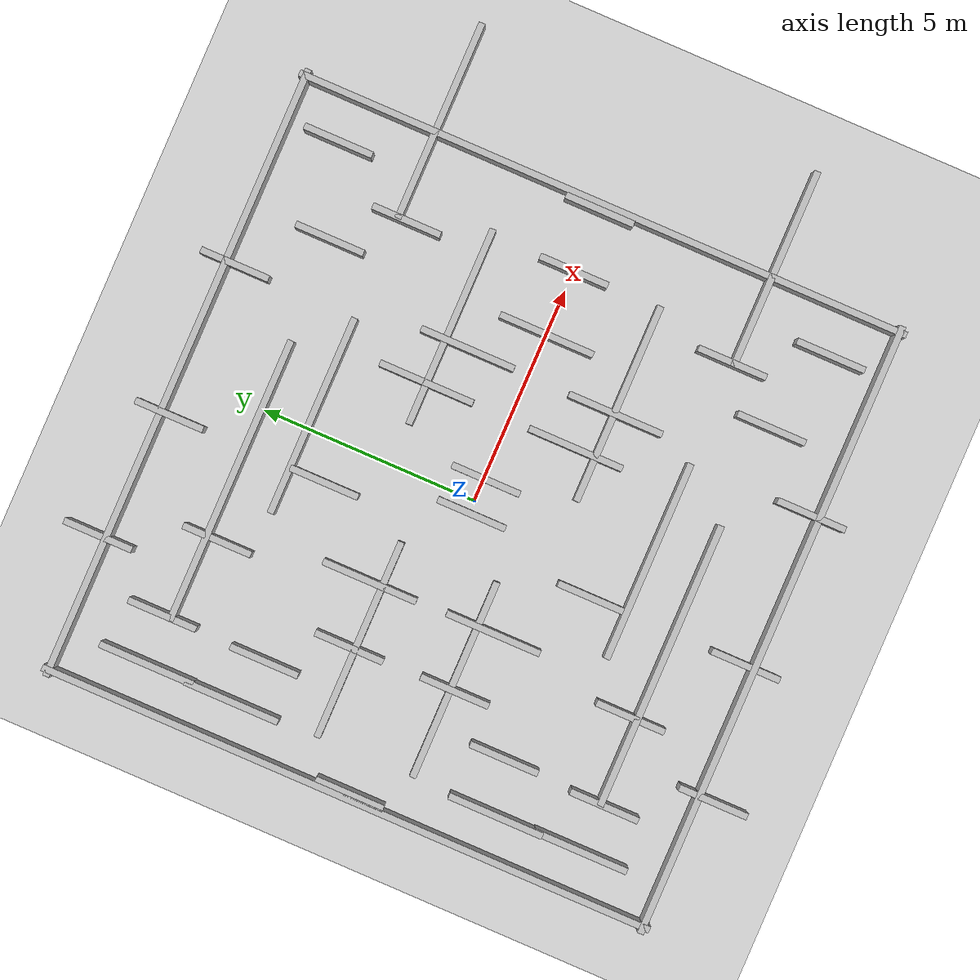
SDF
<sdf version='1.10'>
  <world name='pac_mouse_maze'>
    <physics name='1ms' type='ignored'>
      <max_step_size>0.001</max_step_size>
      <real_time_factor>1</real_time_factor>
      <real_time_update_rate>1000</real_time_update_rate>
    </physics>
    <plugin name='gz::sim::systems::Physics' filename='gz-sim-physics-system'/>
    <plugin name='gz::sim::systems::UserCommands' filename='gz-sim-user-commands-system'/>
    <plugin name='gz::sim::systems::SceneBroadcaster' filename='gz-sim-scene-broadcaster-system'/>
    <plugin name='gz::sim::systems::Sensors' filename='gz-sim-sensors-system'>
      <render_engine>ogre2</render_engine>
    </plugin>
    <gravity>0 0 -9.8000000000000007</gravity>
    <magnetic_field>5.5644999999999998e-06 2.2875799999999999e-05 -4.2388400000000002e-05</magnetic_field>
    <atmosphere type='adiabatic'/>
    <scene>
      <ambient>0.400000006 0.400000006 0.400000006 1</ambient>
      <background>0.699999988 0.699999988 0.699999988 1</background>
      <shadows>true</shadows>
    </scene>
    <model name='ground_plane'>
      <static>true</static>
      <link name='link'>
        <collision name='collision'>
          <geometry>
            <plane>
              <normal>0 0 1</normal>
              <size>100 100</size>
            </plane>
          </geometry>
          <surface>
            <friction>
              <ode/>
            </friction>
            <bounce/>
            <contact/>
          </surface>
        </collision>
        <visual name='visual'>
          <geometry>
            <plane>
              <normal>0 0 1</normal>
              <size>100 100</size>
            </plane>
          </geometry>
          <material>
            <ambient>0.800000012 0.800000012 0.800000012 1</ambient>
            <diffuse>0.800000012 0.800000012 0.800000012 1</diffuse>
          </material>
        </visual>
        <pose>0 0 0 0 0 0</pose>
        <inertial>
          <pose>0 0 0 0 0 0</pose>
          <mass>1</mass>
          <inertia>
            <ixx>1</ixx>
            <ixy>0</ixy>
            <ixz>0</ixz>
            <iyy>1</iyy>
            <iyz>0</iyz>
            <izz>1</izz>
          </inertia>
        </inertial>
        <enable_wind>false</enable_wind>
      </link>
      <pose>0 0 0 0 0 0</pose>
      <self_collide>false</self_collide>
    </model>
    <model name='wall_n'>
      <static>true</static>
      <link name='l'>
        <pose>0 7 0.5 0 0 0</pose>
        <collision name='c'>
          <geometry>
            <box>
              <size>14.300000000000001 0.14999999999999999 1</size>
            </box>
          </geometry>
          <surface>
            <friction>
              <ode/>
            </friction>
            <bounce/>
            <contact/>
          </surface>
        </collision>
        <visual name='v'>
          <geometry>
            <box>
              <size>14.300000000000001 0.14999999999999999 1</size>
            </box>
          </geometry>
        </visual>
        <inertial>
          <pose>0 0 0 0 0 0</pose>
          <mass>1</mass>
          <inertia>
            <ixx>1</ixx>
            <ixy>0</ixy>
            <ixz>0</ixz>
            <iyy>1</iyy>
            <iyz>0</iyz>
            <izz>1</izz>
          </inertia>
        </inertial>
        <enable_wind>false</enable_wind>
      </link>
      <pose>0 0 0 0 0 0</pose>
      <self_collide>false</self_collide>
    </model>
    <model name='wall_s'>
      <static>true</static>
      <link name='l'>
        <pose>0 -7 0.5 0 0 0</pose>
        <collision name='c'>
          <geometry>
            <box>
              <size>14.300000000000001 0.14999999999999999 1</size>
            </box>
          </geometry>
          <surface>
            <friction>
              <ode/>
            </friction>
            <bounce/>
            <contact/>
          </surface>
        </collision>
        <visual name='v'>
          <geometry>
            <box>
              <size>14.300000000000001 0.14999999999999999 1</size>
            </box>
          </geometry>
        </visual>
        <inertial>
          <pose>0 0 0 0 0 0</pose>
          <mass>1</mass>
          <inertia>
            <ixx>1</ixx>
            <ixy>0</ixy>
            <ixz>0</ixz>
            <iyy>1</iyy>
            <iyz>0</iyz>
            <izz>1</izz>
          </inertia>
        </inertial>
        <enable_wind>false</enable_wind>
      </link>
      <pose>0 0 0 0 0 0</pose>
      <self_collide>false</self_collide>
    </model>
    <model name='wall_e'>
      <static>true</static>
      <link name='l'>
        <pose>7 0 0.5 0 0 0</pose>
        <collision name='c'>
          <geometry>
            <box>
              <size>0.14999999999999999 14.300000000000001 1</size>
            </box>
          </geometry>
          <surface>
            <friction>
              <ode/>
            </friction>
            <bounce/>
            <contact/>
          </surface>
        </collision>
        <visual name='v'>
          <geometry>
            <box>
              <size>0.14999999999999999 14.300000000000001 1</size>
            </box>
          </geometry>
        </visual>
        <inertial>
          <pose>0 0 0 0 0 0</pose>
          <mass>1</mass>
          <inertia>
            <ixx>1</ixx>
            <ixy>0</ixy>
            <ixz>0</ixz>
            <iyy>1</iyy>
            <iyz>0</iyz>
            <izz>1</izz>
          </inertia>
        </inertial>
        <enable_wind>false</enable_wind>
      </link>
      <pose>0 0 0 0 0 0</pose>
      <self_collide>false</self_collide>
    </model>
    <model name='wall_w'>
      <static>true</static>
      <link name='l'>
        <pose>-7 0 0.5 0 0 0</pose>
        <collision name='c'>
          <geometry>
            <box>
              <size>0.14999999999999999 14.300000000000001 1</size>
            </box>
          </geometry>
          <surface>
            <friction>
              <ode/>
            </friction>
            <bounce/>
            <contact/>
          </surface>
        </collision>
        <visual name='v'>
          <geometry>
            <box>
              <size>0.14999999999999999 14.300000000000001 1</size>
            </box>
          </geometry>
        </visual>
        <inertial>
          <pose>0 0 0 0 0 0</pose>
          <mass>1</mass>
          <inertia>
            <ixx>1</ixx>
            <ixy>0</ixy>
            <ixz>0</ixz>
            <iyy>1</iyy>
            <iyz>0</iyz>
            <izz>1</izz>
          </inertia>
        </inertial>
        <enable_wind>false</enable_wind>
      </link>
      <pose>0 0 0 0 0 0</pose>
      <self_collide>false</self_collide>
    </model>
    <model name='center_h1'>
      <static>true</static>
      <link name='l'>
        <pose>0 1.2 0.5 0 0 0</pose>
        <collision name='c'>
          <geometry>
            <box>
              <size>4.5999999999999996 0.14999999999999999 1</size>
            </box>
          </geometry>
          <surface>
            <friction>
              <ode/>
            </friction>
            <bounce/>
            <contact/>
          </surface>
        </collision>
        <visual name='v'>
          <geometry>
            <box>
              <size>4.5999999999999996 0.14999999999999999 1</size>
            </box>
          </geometry>
        </visual>
        <inertial>
          <pose>0 0 0 0 0 0</pose>
          <mass>1</mass>
          <inertia>
            <ixx>1</ixx>
            <ixy>0</ixy>
            <ixz>0</ixz>
            <iyy>1</iyy>
            <iyz>0</iyz>
            <izz>1</izz>
          </inertia>
        </inertial>
        <enable_wind>false</enable_wind>
      </link>
      <pose>0.31083199381828308 2.7484714984893799 0 0 0 0</pose>
      <self_collide>false</self_collide>
    </model>
    <model name='center_h2'>
      <static>true</static>
      <link name='l'>
        <pose>0 -1.2 0.5 0 0 0</pose>
        <collision name='c'>
          <geometry>
            <box>
              <size>4.5999999999999996 0.14999999999999999 1</size>
            </box>
          </geometry>
          <surface>
            <friction>
              <ode/>
            </friction>
            <bounce/>
            <contact/>
          </surface>
        </collision>
        <visual name='v'>
          <geometry>
            <box>
              <size>4.5999999999999996 0.14999999999999999 1</size>
            </box>
          </geometry>
        </visual>
        <inertial>
          <pose>0 0 0 0 0 0</pose>
          <mass>1</mass>
          <inertia>
            <ixx>1</ixx>
            <ixy>0</ixy>
            <ixz>0</ixz>
            <iyy>1</iyy>
            <iyz>0</iyz>
            <izz>1</izz>
          </inertia>
        </inertial>
        <enable_wind>false</enable_wind>
      </link>
      <pose>0.30546599626541138 -2.7761015892028809 0 0 0 0</pose>
      <self_collide>false</self_collide>
    </model>
    <model name='mid_n1'>
      <static>true</static>
      <link name='l'>
        <pose>0 4.5999999999999996 0.5 0 0 0</pose>
        <collision name='c'>
          <geometry>
            <box>
              <size>6.5999999999999996 0.14999999999999999 1</size>
            </box>
          </geometry>
          <surface>
            <friction>
              <ode/>
            </friction>
            <bounce/>
            <contact/>
          </surface>
        </collision>
        <visual name='v'>
          <geometry>
            <box>
              <size>6.5999999999999996 0.14999999999999999 1</size>
            </box>
          </geometry>
        </visual>
        <inertial>
          <pose>0 0 0 0 0 0</pose>
          <mass>1</mass>
          <inertia>
            <ixx>1</ixx>
            <ixy>0</ixy>
            <ixz>0</ixz>
            <iyy>1</iyy>
            <iyz>0</iyz>
            <izz>1</izz>
          </inertia>
        </inertial>
        <enable_wind>false</enable_wind>
      </link>
      <pose>-1.6817300319671631 0.41679677367210388 0 0 0 0</pose>
      <self_collide>false</self_collide>
    </model>
    <model name='mid_s1'>
      <static>true</static>
      <link name='l'>
        <pose>0 -4.5999999999999996 0.5 0 0 0</pose>
        <collision name='c'>
          <geometry>
            <box>
              <size>6.5999999999999996 0.14999999999999999 1</size>
            </box>
          </geometry>
          <surface>
            <friction>
              <ode/>
            </friction>
            <bounce/>
            <contact/>
          </surface>
        </collision>
        <visual name='v'>
          <geometry>
            <box>
              <size>6.5999999999999996 0.14999999999999999 1</size>
            </box>
          </geometry>
        </visual>
        <inertial>
          <pose>0 0 0 0 0 0</pose>
          <mass>1</mass>
          <inertia>
            <ixx>1</ixx>
            <ixy>0</ixy>
            <ixz>0</ixz>
            <iyy>1</iyy>
            <iyz>0</iyz>
            <izz>1</izz>
          </inertia>
        </inertial>
        <enable_wind>false</enable_wind>
      </link>
      <pose>-1.6651300191879272 -0.50916963815689087 0 0 0 0</pose>
      <self_collide>false</self_collide>
    </model>
    <model name='tooth_n1'>
      <static>true</static>
      <link name='l'>
        <pose>-1 2.7999999999999998 0.5 0 0 0</pose>
        <collision name='c'>
          <geometry>
            <box>
              <size>0.14999999999999999 1.6000000000000001 1</size>
            </box>
          </geometry>
          <surface>
            <friction>
              <ode/>
            </friction>
            <bounce/>
            <contact/>
          </surface>
        </collision>
        <visual name='v'>
          <geometry>
            <box>
              <size>0.14999999999999999 1.6000000000000001 1</size>
            </box>
          </geometry>
        </visual>
        <inertial>
          <pose>0 0 0 0 0 0</pose>
          <mass>1</mass>
          <inertia>
            <ixx>1</ixx>
            <ixy>0</ixy>
            <ixz>0</ixz>
            <iyy>1</iyy>
            <iyz>0</iyz>
            <izz>1</izz>
          </inertia>
        </inertial>
        <enable_wind>false</enable_wind>
      </link>
      <pose>-3.973536491394043 0 0 0 0 0</pose>
      <self_collide>false</self_collide>
    </model>
    <model name='tooth_n2'>
      <static>true</static>
      <link name='l'>
        <pose>1 2.7999999999999998 0.5 0 0 0</pose>
        <collision name='c'>
          <geometry>
            <box>
              <size>0.14999999999999999 1.6000000000000001 1</size>
            </box>
          </geometry>
          <surface>
            <friction>
              <ode/>
            </friction>
            <bounce/>
            <contact/>
          </surface>
        </collision>
        <visual name='v'>
          <geometry>
            <box>
              <size>0.14999999999999999 1.6000000000000001 1</size>
            </box>
          </geometry>
        </visual>
        <inertial>
          <pose>0 0 0 0 0 0</pose>
          <mass>1</mass>
          <inertia>
            <ixx>1</ixx>
            <ixy>0</ixy>
            <ixz>0</ixz>
            <iyy>1</iyy>
            <iyz>0</iyz>
            <izz>1</izz>
          </inertia>
        </inertial>
        <enable_wind>false</enable_wind>
      </link>
      <pose>-1.9143466949462891 0.34273400902748108 0 0 0 0</pose>
      <self_collide>false</self_collide>
    </model>
    <model name='tooth_s1'>
      <static>true</static>
      <link name='l'>
        <pose>-1 -2.7999999999999998 0.5 0 0 0</pose>
        <collision name='c'>
          <geometry>
            <box>
              <size>0.14999999999999999 1.6000000000000001 1</size>
            </box>
          </geometry>
          <surface>
            <friction>
              <ode/>
            </friction>
            <bounce/>
            <contact/>
          </surface>
        </collision>
        <visual name='v'>
          <geometry>
            <box>
              <size>0.14999999999999999 1.6000000000000001 1</size>
            </box>
          </geometry>
        </visual>
        <inertial>
          <pose>0 0 0 0 0 0</pose>
          <mass>1</mass>
          <inertia>
            <ixx>1</ixx>
            <ixy>0</ixy>
            <ixz>0</ixz>
            <iyy>1</iyy>
            <iyz>0</iyz>
            <izz>1</izz>
          </inertia>
        </inertial>
        <enable_wind>false</enable_wind>
      </link>
      <pose>-3.8529505729675293 0 0 0 0 0</pose>
      <self_collide>false</self_collide>
    </model>
    <model name='tooth_s2'>
      <static>true</static>
      <link name='l'>
        <pose>1 -2.7999999999999998 0.5 0 0 0</pose>
        <collision name='c'>
          <geometry>
            <box>
              <size>0.14999999999999999 1.6000000000000001 1</size>
            </box>
          </geometry>
          <surface>
            <friction>
              <ode/>
            </friction>
            <bounce/>
            <contact/>
          </surface>
        </collision>
        <visual name='v'>
          <geometry>
            <box>
              <size>0.14999999999999999 1.6000000000000001 1</size>
            </box>
          </geometry>
        </visual>
        <inertial>
          <pose>0 0 0 0 0 0</pose>
          <mass>1</mass>
          <inertia>
            <ixx>1</ixx>
            <ixy>0</ixy>
            <ixz>0</ixz>
            <iyy>1</iyy>
            <iyz>0</iyz>
            <izz>1</izz>
          </inertia>
        </inertial>
        <enable_wind>false</enable_wind>
      </link>
      <pose>-1.9104142189025879 -0.36555600166320801 0 0 0 0</pose>
      <self_collide>false</self_collide>
    </model>
    <model name='side_l1'>
      <static>true</static>
      <link name='l'>
        <pose>-4.5999999999999996 1.8 0.5 0 0 0</pose>
        <collision name='c'>
          <geometry>
            <box>
              <size>0.14999999999999999 2.2000000000000002 1</size>
            </box>
          </geometry>
          <surface>
            <friction>
              <ode/>
            </friction>
            <bounce/>
            <contact/>
          </surface>
        </collision>
        <visual name='v'>
          <geometry>
            <box>
              <size>0.14999999999999999 2.2000000000000002 1</size>
            </box>
          </geometry>
        </visual>
        <inertial>
          <pose>0 0 0 0 0 0</pose>
          <mass>1</mass>
          <inertia>
            <ixx>1</ixx>
            <ixy>0</ixy>
            <ixz>0</ixz>
            <iyy>1</iyy>
            <iyz>0</iyz>
            <izz>1</izz>
          </inertia>
        </inertial>
        <enable_wind>false</enable_wind>
      </link>
      <pose>-1.4447000026702881 3.3100700378417969 0.017654599621891975 0 0 0</pose>
      <self_collide>false</self_collide>
    </model>
    <model name='side_l2'>
      <static>true</static>
      <link name='l'>
        <pose>-4 -1.8 0.5 0 0 0</pose>
        <collision name='c'>
          <geometry>
            <box>
              <size>0.14999999999999999 2.2000000000000002 1</size>
            </box>
          </geometry>
          <surface>
            <friction>
              <ode/>
            </friction>
            <bounce/>
            <contact/>
          </surface>
        </collision>
        <visual name='v'>
          <geometry>
            <box>
              <size>0.14999999999999999 2.2000000000000002 1</size>
            </box>
          </geometry>
        </visual>
        <inertial>
          <pose>0 0 0 0 0 0</pose>
          <mass>1</mass>
          <inertia>
            <ixx>1</ixx>
            <ixy>0</ixy>
            <ixz>0</ixz>
            <iyy>1</iyy>
            <iyz>0</iyz>
            <izz>1</izz>
          </inertia>
        </inertial>
        <enable_wind>false</enable_wind>
      </link>
      <pose>1.5401099920272827 0.2899869978427887 0 0 0 0</pose>
      <self_collide>false</self_collide>
    </model>

    <model name='side_l1_1'>
      <static>true</static>
      <link name='l'>
        <pose>-4.5999999999999996 1.8 0.5 0 0 0</pose>
        <collision name='c'>
          <geometry>
            <box>
              <size>0.14999999999999999 2.2000000000000002 1</size>
            </box>
          </geometry>
          <surface>
            <friction>
              <ode/>
            </friction>
            <bounce/>
            <contact/>
          </surface>
        </collision>
        <visual name='v'>
          <geometry>
            <box>
              <size>0.14999999999999999 2.2000000000000002 1</size>
            </box>
          </geometry>
        </visual>
      </link>
      <pose>-1.4374589282612344 -6.9057183626162679 0 0 0 0</pose>
      <self_collide>false</self_collide>
    </model>
    <model name='side_l1_2'>
      <static>true</static>
      <link name='l'>
        <pose>-4.5999999999999996 1.8 0.5 0 0 0</pose>
        <collision name='c'>
          <geometry>
            <box>
              <size>0.14999999999999999 2.2000000000000002 1</size>
            </box>
          </geometry>
          <surface>
            <friction>
              <ode/>
            </friction>
            <bounce/>
            <contact/>
          </surface>
        </collision>
        <visual name='v'>
          <geometry>
            <box>
              <size>0.14999999999999999 2.2000000000000002 1</size>
            </box>
          </geometry>
        </visual>
      </link>
      <pose>-1.462189555409112 1.2981442079814005 0.017654599621891975 0 0 0</pose>
      <self_collide>false</self_collide>
    </model>
    <model name='side_l1_3'>
      <static>true</static>
      <link name='l'>
        <pose>-4.5999999999999996 1.8 0.5 0 0 0</pose>
        <collision name='c'>
          <geometry>
            <box>
              <size>0.14999999999999999 2.2000000000000002 1</size>
            </box>
          </geometry>
          <surface>
            <friction>
              <ode/>
            </friction>
            <bounce/>
            <contact/>
          </surface>
        </collision>
        <visual name='v'>
          <geometry>
            <box>
              <size>0.14999999999999999 2.2000000000000002 1</size>
            </box>
          </geometry>
        </visual>
      </link>
      <pose>-1.4584377596112619 -4.924460619562498 0.017654599621891975 0 0 0</pose>
      <self_collide>false</self_collide>
    </model>
    <model name='center_h1_1_1_1'>
      <static>true</static>
      <link name='l'>
        <pose>0 1.2 0.5 0 0 0</pose>
        <collision name='c'>
          <geometry>
            <box>
              <size>4.5999999999999996 0.14999999999999999 1</size>
            </box>
          </geometry>
          <surface>
            <friction>
              <ode/>
            </friction>
            <bounce/>
            <contact/>
          </surface>
        </collision>
        <visual name='v'>
          <geometry>
            <box>
              <size>4.5999999999999996 0.14999999999999999 1</size>
            </box>
          </geometry>
        </visual>
      </link>
      <pose>-3.7317791080781486 -0.10137727959371734 0 0 0 0</pose>
      <self_collide>false</self_collide>
    </model>
    <model name='center_h1_1_1_2'>
      <static>true</static>
      <link name='l'>
        <pose>0 1.2 0.5 0 0 0</pose>
        <collision name='c'>
          <geometry>
            <box>
              <size>4.5999999999999996 0.14999999999999999 1</size>
            </box>
          </geometry>
          <surface>
            <friction>
              <ode/>
            </friction>
            <bounce/>
            <contact/>
          </surface>
        </collision>
        <visual name='v'>
          <geometry>
            <box>
              <size>4.5999999999999996 0.14999999999999999 1</size>
            </box>
          </geometry>
        </visual>
      </link>
      <pose>-3.7089964812762171 -2.3421180831138217 0 0 0 0</pose>
      <self_collide>false</self_collide>
    </model>
    <model name='tooth_s1_1'>
      <static>true</static>
      <link name='l'>
        <pose>-1 -2.7999999999999998 0.5 0 0 0</pose>
        <collision name='c'>
          <geometry>
            <box>
              <size>0.14999999999999999 1.6000000000000001 1</size>
            </box>
          </geometry>
          <surface>
            <friction>
              <ode/>
            </friction>
            <bounce/>
            <contact/>
          </surface>
        </collision>
        <visual name='v'>
          <geometry>
            <box>
              <size>0.14999999999999999 1.6000000000000001 1</size>
            </box>
          </geometry>
        </visual>
      </link>
      <pose>-2.9704577070137894 4.031986442187014 0 0 0 0</pose>
      <self_collide>false</self_collide>
    </model>
    <model name='tooth_s1_2'>
      <static>true</static>
      <link name='l'>
        <pose>-1 -2.7999999999999998 0.5 0 0 0</pose>
        <collision name='c'>
          <geometry>
            <box>
              <size>0.14999999999999999 1.6000000000000001 1</size>
            </box>
          </geometry>
          <surface>
            <friction>
              <ode/>
            </friction>
            <bounce/>
            <contact/>
          </surface>
        </collision>
        <visual name='v'>
          <geometry>
            <box>
              <size>0.14999999999999999 1.6000000000000001 1</size>
            </box>
          </geometry>
        </visual>
      </link>
      <pose>-2.9420648420682713 1.5576978093052642 0 0 0 0</pose>
      <self_collide>false</self_collide>
    </model>
    <model name='tooth_s1_4'>
      <static>true</static>
      <link name='l'>
        <pose>-1 -2.7999999999999998 0.5 0 0 0</pose>
        <collision name='c'>
          <geometry>
            <box>
              <size>0.14999999999999999 1.6000000000000001 1</size>
            </box>
          </geometry>
          <surface>
            <friction>
              <ode/>
            </friction>
            <bounce/>
            <contact/>
          </surface>
        </collision>
        <visual name='v'>
          <geometry>
            <box>
              <size>0.14999999999999999 1.6000000000000001 1</size>
            </box>
          </geometry>
        </visual>
      </link>
      <pose>-2.9003704805906012 9.9780785939233247 0 0 0 0</pose>
      <self_collide>false</self_collide>
    </model>
    <model name='tooth_s1_5'>
      <static>true</static>
      <link name='l'>
        <pose>-1 -2.7999999999999998 0.5 0 0 0</pose>
        <collision name='c'>
          <geometry>
            <box>
              <size>0.14999999999999999 1.6000000000000001 1</size>
            </box>
          </geometry>
          <surface>
            <friction>
              <ode/>
            </friction>
            <bounce/>
            <contact/>
          </surface>
        </collision>
        <visual name='v'>
          <geometry>
            <box>
              <size>0.14999999999999999 1.6000000000000001 1</size>
            </box>
          </geometry>
        </visual>
      </link>
      <pose>-1.9782247153589907 7.5736243626817039 0 0 0 0</pose>
      <self_collide>false</self_collide>
    </model>
    <model name='tooth_s1_6'>
      <static>true</static>
      <link name='l'>
        <pose>-1 -2.7999999999999998 0.5 0 0 0</pose>
        <collision name='c'>
          <geometry>
            <box>
              <size>0.14999999999999999 1.6000000000000001 1</size>
            </box>
          </geometry>
          <surface>
            <friction>
              <ode/>
            </friction>
            <bounce/>
            <contact/>
          </surface>
        </collision>
        <visual name='v'>
          <geometry>
            <box>
              <size>0.14999999999999999 1.6000000000000001 1</size>
            </box>
          </geometry>
        </visual>
      </link>
      <pose>-3.9258784000761473 8.0205390759469992 0 0 0 0</pose>
      <self_collide>false</self_collide>
    </model>
    <model name='tooth_s1_7'>
      <static>true</static>
      <link name='l'>
        <pose>-1 -2.7999999999999998 0.5 0 0 0</pose>
        <collision name='c'>
          <geometry>
            <box>
              <size>0.14999999999999999 1.6000000000000001 1</size>
            </box>
          </geometry>
          <surface>
            <friction>
              <ode/>
            </friction>
            <bounce/>
            <contact/>
          </surface>
        </collision>
        <visual name='v'>
          <geometry>
            <box>
              <size>0.14999999999999999 1.6000000000000001 1</size>
            </box>
          </geometry>
        </visual>
      </link>
      <pose>-3.9343864187147339 -2.3951841738276638 0 0 0 0</pose>
      <self_collide>false</self_collide>
    </model>
    <model name='tooth_s1_8'>
      <static>true</static>
      <link name='l'>
        <pose>-1 -2.7999999999999998 0.5 0 0 0</pose>
        <collision name='c'>
          <geometry>
            <box>
              <size>0.14999999999999999 1.6000000000000001 1</size>
            </box>
          </geometry>
          <surface>
            <friction>
              <ode/>
            </friction>
            <bounce/>
            <contact/>
          </surface>
        </collision>
        <visual name='v'>
          <geometry>
            <box>
              <size>0.14999999999999999 1.6000000000000001 1</size>
            </box>
          </geometry>
        </visual>
      </link>
      <pose>-2.9188104373121644 -4.5235124282362271 0 0 0 0</pose>
      <self_collide>false</self_collide>
    </model>
    <model name='tooth_s1_9'>
      <static>true</static>
      <link name='l'>
        <pose>-1 -2.7999999999999998 0.5 0 0 0</pose>
        <collision name='c'>
          <geometry>
            <box>
              <size>0.14999999999999999 1.6000000000000001 1</size>
            </box>
          </geometry>
          <surface>
            <friction>
              <ode/>
            </friction>
            <bounce/>
            <contact/>
          </surface>
        </collision>
        <visual name='v'>
          <geometry>
            <box>
              <size>0.14999999999999999 1.6000000000000001 1</size>
            </box>
          </geometry>
        </visual>
      </link>
      <pose>-1.9463405047141444 -2.1540964707850181 0 0 0 0</pose>
      <self_collide>false</self_collide>
    </model>
    <model name='tooth_s1_10'>
      <static>true</static>
      <link name='l'>
        <pose>-1 -2.7999999999999998 0.5 0 0 0</pose>
        <collision name='c'>
          <geometry>
            <box>
              <size>0.14999999999999999 1.6000000000000001 1</size>
            </box>
          </geometry>
          <surface>
            <friction>
              <ode/>
            </friction>
            <bounce/>
            <contact/>
          </surface>
        </collision>
        <visual name='v'>
          <geometry>
            <box>
              <size>0.14999999999999999 1.6000000000000001 1</size>
            </box>
          </geometry>
        </visual>
      </link>
      <pose>-5.8773021815188624 2.7658992044078894 0 0 0 0</pose>
      <self_collide>false</self_collide>
    </model>
    <model name='side_l2_1'>
      <static>true</static>
      <link name='l'>
        <pose>-4 -1.8 0.5 0 0 0</pose>
        <collision name='c'>
          <geometry>
            <box>
              <size>0.14999999999999999 2.2000000000000002 1</size>
            </box>
          </geometry>
          <surface>
            <friction>
              <ode/>
            </friction>
            <bounce/>
            <contact/>
          </surface>
        </collision>
        <visual name='v'>
          <geometry>
            <box>
              <size>0.14999999999999999 2.2000000000000002 1</size>
            </box>
          </geometry>
        </visual>
      </link>
      <pose>1.5103553576525348 3.1898467439566711 0 0 0 0</pose>
      <self_collide>false</self_collide>
    </model>
    <model name='tooth_s1_3_1'>
      <static>true</static>
      <link name='l'>
        <pose>-1 -2.7999999999999998 0.5 0 0 0</pose>
        <collision name='c'>
          <geometry>
            <box>
              <size>0.14999999999999999 1.6000000000000001 1</size>
            </box>
          </geometry>
          <surface>
            <friction>
              <ode/>
            </friction>
            <bounce/>
            <contact/>
          </surface>
        </collision>
        <visual name='v'>
          <geometry>
            <box>
              <size>0.14999999999999999 1.6000000000000001 1</size>
            </box>
          </geometry>
        </visual>
      </link>
      <pose>1.5304648380906869 2.7561842549198903 0 0 0 0</pose>
      <self_collide>false</self_collide>
    </model>
    <model name='tooth_s1_3_1_1'>
      <static>true</static>
      <link name='l'>
        <pose>-1 -2.7999999999999998 0.5 0 0 0</pose>
        <collision name='c'>
          <geometry>
            <box>
              <size>0.14999999999999999 1.6000000000000001 1</size>
            </box>
          </geometry>
          <surface>
            <friction>
              <ode/>
            </friction>
            <bounce/>
            <contact/>
          </surface>
        </collision>
        <visual name='v'>
          <geometry>
            <box>
              <size>0.14999999999999999 1.6000000000000001 1</size>
            </box>
          </geometry>
        </visual>
      </link>
      <pose>0.72212021994473563 2.7459512193323832 0 0 0 0</pose>
      <self_collide>false</self_collide>
    </model>
    <model name='tooth_s1_2_1'>
      <static>true</static>
      <link name='l'>
        <pose>-1 -2.7999999999999998 0.5 0 0 0</pose>
        <collision name='c'>
          <geometry>
            <box>
              <size>0.14999999999999999 1.6000000000000001 1</size>
            </box>
          </geometry>
          <surface>
            <friction>
              <ode/>
            </friction>
            <bounce/>
            <contact/>
          </surface>
        </collision>
        <visual name='v'>
          <geometry>
            <box>
              <size>0.14999999999999999 1.6000000000000001 1</size>
            </box>
          </geometry>
        </visual>
      </link>
      <pose>4.99764025216043 -2.4716432400592252 0 0 0 0</pose>
      <self_collide>false</self_collide>
    </model>
    <model name='tooth_s1_2_2'>
      <static>true</static>
      <link name='l'>
        <pose>-1 -2.7999999999999998 0.5 0 0 0</pose>
        <collision name='c'>
          <geometry>
            <box>
              <size>0.14999999999999999 1.6000000000000001 1</size>
            </box>
          </geometry>
          <surface>
            <friction>
              <ode/>
            </friction>
            <bounce/>
            <contact/>
          </surface>
        </collision>
        <visual name='v'>
          <geometry>
            <box>
              <size>0.14999999999999999 1.6000000000000001 1</size>
            </box>
          </geometry>
        </visual>
      </link>
      <pose>4.9690207444034558 7.9256186920607608 0 0 0 0</pose>
      <self_collide>false</self_collide>
    </model>
    <model name='tooth_s1_2_3'>
      <static>true</static>
      <link name='l'>
        <pose>-1 -2.7999999999999998 0.5 0 0 0</pose>
        <collision name='c'>
          <geometry>
            <box>
              <size>0.14999999999999999 1.6000000000000001 1</size>
            </box>
          </geometry>
          <surface>
            <friction>
              <ode/>
            </friction>
            <bounce/>
            <contact/>
          </surface>
        </collision>
        <visual name='v'>
          <geometry>
            <box>
              <size>0.14999999999999999 1.6000000000000001 1</size>
            </box>
          </geometry>
        </visual>
      </link>
      <pose>3.6163339644483763 -4.0105304334107457 0 0 0 0</pose>
      <self_collide>false</self_collide>
    </model>
    <model name='tooth_s1_2_4'>
      <static>true</static>
      <link name='l'>
        <pose>-1 -2.7999999999999998 0.5 0 0 0</pose>
        <collision name='c'>
          <geometry>
            <box>
              <size>0.14999999999999999 1.6000000000000001 1</size>
            </box>
          </geometry>
          <surface>
            <friction>
              <ode/>
            </friction>
            <bounce/>
            <contact/>
          </surface>
        </collision>
        <visual name='v'>
          <geometry>
            <box>
              <size>0.14999999999999999 1.6000000000000001 1</size>
            </box>
          </geometry>
        </visual>
      </link>
      <pose>3.6454299283655223 9.5895302907470494 0 0 0 0</pose>
      <self_collide>false</self_collide>
    </model>
    <model name='center_h2_1'>
      <static>true</static>
      <link name='l'>
        <pose>0 -1.2 0.5 0 0 0</pose>
        <collision name='c'>
          <geometry>
            <box>
              <size>4.5999999999999996 0.14999999999999999 1</size>
            </box>
          </geometry>
          <surface>
            <friction>
              <ode/>
            </friction>
            <bounce/>
            <contact/>
          </surface>
        </collision>
        <visual name='v'>
          <geometry>
            <box>
              <size>4.5999999999999996 0.14999999999999999 1</size>
            </box>
          </geometry>
        </visual>
      </link>
      <pose>3.1726983017028059 -0.82560303551284386 0 0 0 0</pose>
      <self_collide>false</self_collide>
    </model>
    <model name='center_h2_2'>
      <static>true</static>
      <link name='l'>
        <pose>0 -1.2 0.5 0 0 0</pose>
        <collision name='c'>
          <geometry>
            <box>
              <size>4.5999999999999996 0.14999999999999999 1</size>
            </box>
          </geometry>
          <surface>
            <friction>
              <ode/>
            </friction>
            <bounce/>
            <contact/>
          </surface>
        </collision>
        <visual name='v'>
          <geometry>
            <box>
              <size>4.5999999999999996 0.14999999999999999 1</size>
            </box>
          </geometry>
        </visual>
      </link>
      <pose>3.2621592898328027 3.1640089977516896 0 0 0 0</pose>
      <self_collide>false</self_collide>
    </model>
    <model name='side_l2_1_1'>
      <static>true</static>
      <link name='l'>
        <pose>-4 -1.8 0.5 0 0 0</pose>
        <collision name='c'>
          <geometry>
            <box>
              <size>0.14999999999999999 2.2000000000000002 1</size>
            </box>
          </geometry>
          <surface>
            <friction>
              <ode/>
            </friction>
            <bounce/>
            <contact/>
          </surface>
        </collision>
        <visual name='v'>
          <geometry>
            <box>
              <size>0.14999999999999999 2.2000000000000002 1</size>
            </box>
          </geometry>
        </visual>
      </link>
      <pose>5.9168020405574424 0.23885795108122576 0 0 0 0</pose>
      <self_collide>false</self_collide>
    </model>
    <model name='side_l2_1_1_1'>
      <static>true</static>
      <link name='l'>
        <pose>-4 -1.8 0.5 0 0 0</pose>
        <collision name='c'>
          <geometry>
            <box>
              <size>0.14999999999999999 2.2000000000000002 1</size>
            </box>
          </geometry>
          <surface>
            <friction>
              <ode/>
            </friction>
            <bounce/>
            <contact/>
          </surface>
        </collision>
        <visual name='v'>
          <geometry>
            <box>
              <size>0.14999999999999999 2.2000000000000002 1</size>
            </box>
          </geometry>
        </visual>
      </link>
      <pose>6.9721422565185849 3.2437429016186008 0 0 0 0</pose>
      <self_collide>false</self_collide>
    </model>
    <model name='side_l2_1_1_2'>
      <static>true</static>
      <link name='l'>
        <pose>-4 -1.8 0.5 0 0 0</pose>
        <collision name='c'>
          <geometry>
            <box>
              <size>0.14999999999999999 2.2000000000000002 1</size>
            </box>
          </geometry>
          <surface>
            <friction>
              <ode/>
            </friction>
            <bounce/>
            <contact/>
          </surface>
        </collision>
        <visual name='v'>
          <geometry>
            <box>
              <size>0.14999999999999999 2.2000000000000002 1</size>
            </box>
          </geometry>
        </visual>
      </link>
      <pose>7.9275577732367806 1.7945692242311466 0 0 0 0</pose>
      <self_collide>false</self_collide>
    </model>
    <model name='side_l2_1_1_3'>
      <static>true</static>
      <link name='l'>
        <pose>-4 -1.8 0.5 0 0 0</pose>
        <collision name='c'>
          <geometry>
            <box>
              <size>0.14999999999999999 2.2000000000000002 1</size>
            </box>
          </geometry>
          <surface>
            <friction>
              <ode/>
            </friction>
            <bounce/>
            <contact/>
          </surface>
        </collision>
        <visual name='v'>
          <geometry>
            <box>
              <size>0.14999999999999999 2.2000000000000002 1</size>
            </box>
          </geometry>
        </visual>
      </link>
      <pose>6.938078460541159 -0.25701150594710054 0 0 0 0</pose>
      <self_collide>false</self_collide>
    </model>
    <model name='ground_plane_1'>
      <static>true</static>
      <link name='link'>
        <collision name='collision'>
          <geometry>
            <plane>
              <normal>0 0 1</normal>
              <size>100 100</size>
            </plane>
          </geometry>
          <surface>
            <friction>
              <ode/>
            </friction>
            <bounce/>
            <contact/>
          </surface>
        </collision>
        <visual name='visual'>
          <geometry>
            <plane>
              <normal>0 0 1</normal>
              <size>100 100</size>
            </plane>
          </geometry>
          <material>
            <ambient>0.800000012 0.800000012 0.800000012 1</ambient>
            <diffuse>0.800000012 0.800000012 0.800000012 1</diffuse>
          </material>
        </visual>
      </link>
      <pose>2.8394381824645403 1.2870867688436358 0 0 0 0</pose>
      <self_collide>false</self_collide>
    </model>
    <model name='side_l2_1_1_1_1'>
      <static>true</static>
      <link name='l'>
        <pose>-4 -1.8 0.5 0 0 0</pose>
        <collision name='c'>
          <geometry>
            <box>
              <size>0.14999999999999999 2.2000000000000002 1</size>
            </box>
          </geometry>
          <surface>
            <friction>
              <ode/>
            </friction>
            <bounce/>
            <contact/>
          </surface>
        </collision>
        <visual name='v'>
          <geometry>
            <box>
              <size>0.14999999999999999 2.2000000000000002 1</size>
            </box>
          </geometry>
        </visual>
      </link>
      <pose>5.9361390937104712 3.7657071149472925 0 0 0 0</pose>
      <self_collide>false</self_collide>
    </model>
    <model name='tooth_s1_2_1_1'>
      <static>true</static>
      <link name='l'>
        <pose>-1 -2.7999999999999998 0.5 0 0 0</pose>
        <collision name='c'>
          <geometry>
            <box>
              <size>0.14999999999999999 1.6000000000000001 1</size>
            </box>
          </geometry>
          <surface>
            <friction>
              <ode/>
            </friction>
            <bounce/>
            <contact/>
          </surface>
        </collision>
        <visual name='v'>
          <geometry>
            <box>
              <size>0.14999999999999999 1.6000000000000001 1</size>
            </box>
          </geometry>
        </visual>
      </link>
      <pose>6.9486210122854555 -3.0278056015503525 0 0 0 0</pose>
      <self_collide>false</self_collide>
    </model>
    <model name='tooth_s1_2_1_2'>
      <static>true</static>
      <link name='l'>
        <pose>-1 -2.7999999999999998 0.5 0 0 0</pose>
        <collision name='c'>
          <geometry>
            <box>
              <size>0.14999999999999999 1.6000000000000001 1</size>
            </box>
          </geometry>
          <surface>
            <friction>
              <ode/>
            </friction>
            <bounce/>
            <contact/>
          </surface>
        </collision>
        <visual name='v'>
          <geometry>
            <box>
              <size>0.14999999999999999 1.6000000000000001 1</size>
            </box>
          </geometry>
        </visual>
      </link>
      <pose>6.9908902325490052 8.5968397210925378 0 0 0 0</pose>
      <self_collide>false</self_collide>
    </model>
    <model name='tooth_s1_2_1_3'>
      <static>true</static>
      <link name='l'>
        <pose>-1 -2.7999999999999998 0.5 0 0 0</pose>
        <collision name='c'>
          <geometry>
            <box>
              <size>0.14999999999999999 1.6000000000000001 1</size>
            </box>
          </geometry>
          <surface>
            <friction>
              <ode/>
            </friction>
            <bounce/>
            <contact/>
          </surface>
        </collision>
        <visual name='v'>
          <geometry>
            <box>
              <size>0.14999999999999999 1.6000000000000001 1</size>
            </box>
          </geometry>
        </visual>
      </link>
      <pose>6.427042977455546 2.8014574147892173 0 0 0 0</pose>
      <self_collide>false</self_collide>
    </model>
    <model name='tooth_s1_3_1_2'>
      <static>true</static>
      <link name='l'>
        <pose>-1 -2.7999999999999998 0.5 0 0 0</pose>
        <collision name='c'>
          <geometry>
            <box>
              <size>0.14999999999999999 1.6000000000000001 1</size>
            </box>
          </geometry>
          <surface>
            <friction>
              <ode/>
            </friction>
            <bounce/>
            <contact/>
          </surface>
        </collision>
        <visual name='v'>
          <geometry>
            <box>
              <size>0.14999999999999999 1.6000000000000001 1</size>
            </box>
          </geometry>
        </visual>
      </link>
      <pose>7.8626904466230405 2.810383377791108 0 0 0 0</pose>
      <self_collide>false</self_collide>
    </model>
    <model name='center_h2_3'>
      <static>true</static>
      <link name='l'>
        <pose>0 -1.2 0.5 0 0 0</pose>
        <collision name='c'>
          <geometry>
            <box>
              <size>4.5999999999999996 0.14999999999999999 1</size>
            </box>
          </geometry>
          <surface>
            <friction>
              <ode/>
            </friction>
            <bounce/>
            <contact/>
          </surface>
        </collision>
        <visual name='v'>
          <geometry>
            <box>
              <size>4.5999999999999996 0.14999999999999999 1</size>
            </box>
          </geometry>
        </visual>
      </link>
      <pose>7.192244010554524 -2.7843579010605422 0 0 0 0</pose>
      <self_collide>false</self_collide>
    </model>
    <model name='center_h2_3_1'>
      <static>true</static>
      <link name='l'>
        <pose>0 -1.2 0.5 0 0 0</pose>
        <collision name='c'>
          <geometry>
            <box>
              <size>4.5999999999999996 0.14999999999999999 1</size>
            </box>
          </geometry>
          <surface>
            <friction>
              <ode/>
            </friction>
            <bounce/>
            <contact/>
          </surface>
        </collision>
        <visual name='v'>
          <geometry>
            <box>
              <size>4.5999999999999996 0.14999999999999999 1</size>
            </box>
          </geometry>
        </visual>
      </link>
      <pose>7.2572946881052793 5.1501648194248162 0 0 0 0</pose>
      <self_collide>false</self_collide>
    </model>
    <model name='tooth_s1_2_1_3_1'>
      <static>true</static>
      <link name='l'>
        <pose>-1 -2.7999999999999998 0.5 0 0 0</pose>
        <collision name='c'>
          <geometry>
            <box>
              <size>0.14999999999999999 1.6000000000000001 1</size>
            </box>
          </geometry>
          <surface>
            <friction>
              <ode/>
            </friction>
            <bounce/>
            <contact/>
          </surface>
        </collision>
        <visual name='v'>
          <geometry>
            <box>
              <size>0.14999999999999999 1.6000000000000001 1</size>
            </box>
          </geometry>
        </visual>
      </link>
      <pose>5.9640031272362615 -1.1331859256246981 0 0 0 0</pose>
      <self_collide>false</self_collide>
    </model>
    <model name='tooth_s1_2_1_3_2'>
      <static>true</static>
      <link name='l'>
        <pose>-1 -2.7999999999999998 0.5 0 0 0</pose>
        <collision name='c'>
          <geometry>
            <box>
              <size>0.14999999999999999 1.6000000000000001 1</size>
            </box>
          </geometry>
          <surface>
            <friction>
              <ode/>
            </friction>
            <bounce/>
            <contact/>
          </surface>
        </collision>
        <visual name='v'>
          <geometry>
            <box>
              <size>0.14999999999999999 1.6000000000000001 1</size>
            </box>
          </geometry>
        </visual>
      </link>
      <pose>5.9904557066822042 6.5576250821908335 0 0 0 0</pose>
      <self_collide>false</self_collide>
    </model>
    <model name='tooth_s1_4_1'>
      <static>true</static>
      <link name='l'>
        <pose>-1 -2.7999999999999998 0.5 0 0 0</pose>
        <collision name='c'>
          <geometry>
            <box>
              <size>0.14999999999999999 1.6000000000000001 1</size>
            </box>
          </geometry>
          <surface>
            <friction>
              <ode/>
            </friction>
            <bounce/>
            <contact/>
          </surface>
        </collision>
        <visual name='v'>
          <geometry>
            <box>
              <size>0.14999999999999999 1.6000000000000001 1</size>
            </box>
          </geometry>
        </visual>
      </link>
      <pose>0.093527535457181621 9.5954025150880362 0 0 0 0</pose>
      <self_collide>false</self_collide>
    </model>
    <model name='tooth_s1_4_2'>
      <static>true</static>
      <link name='l'>
        <pose>-1 -2.7999999999999998 0.5 0 0 0</pose>
        <collision name='c'>
          <geometry>
            <box>
              <size>0.14999999999999999 1.6000000000000001 1</size>
            </box>
          </geometry>
          <surface>
            <friction>
              <ode/>
            </friction>
            <bounce/>
            <contact/>
          </surface>
        </collision>
        <visual name='v'>
          <geometry>
            <box>
              <size>0.14999999999999999 1.6000000000000001 1</size>
            </box>
          </geometry>
        </visual>
      </link>
      <pose>0.069000451535844221 -3.997569230153422 0 0 0 0</pose>
      <self_collide>false</self_collide>
    </model>
    <light name='sun' type='directional'>
      <pose>0 0 10 0 0 0</pose>
      <cast_shadows>true</cast_shadows>
      <intensity>1</intensity>
      <direction>-0.5 0.10000000000000001 -0.90000000000000002</direction>
      <diffuse>0.800000012 0.800000012 0.800000012 1</diffuse>
      <specular>0.200000003 0.200000003 0.200000003 1</specular>
      <attenuation>
        <range>10</range>
        <linear>1</linear>
        <constant>1</constant>
        <quadratic>0</quadratic>
      </attenuation>
      <spot>
        <inner_angle>0</inner_angle>
        <outer_angle>0</outer_angle>
        <falloff>0</falloff>
      </spot>
    </light>
  </world>
</sdf>
